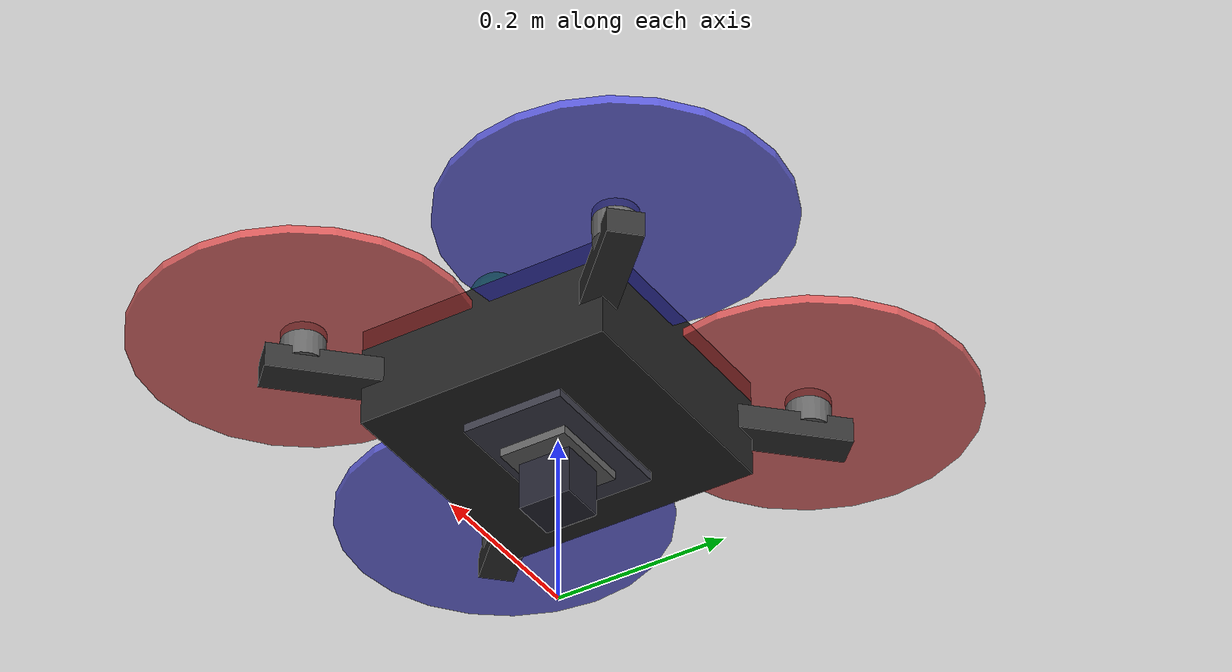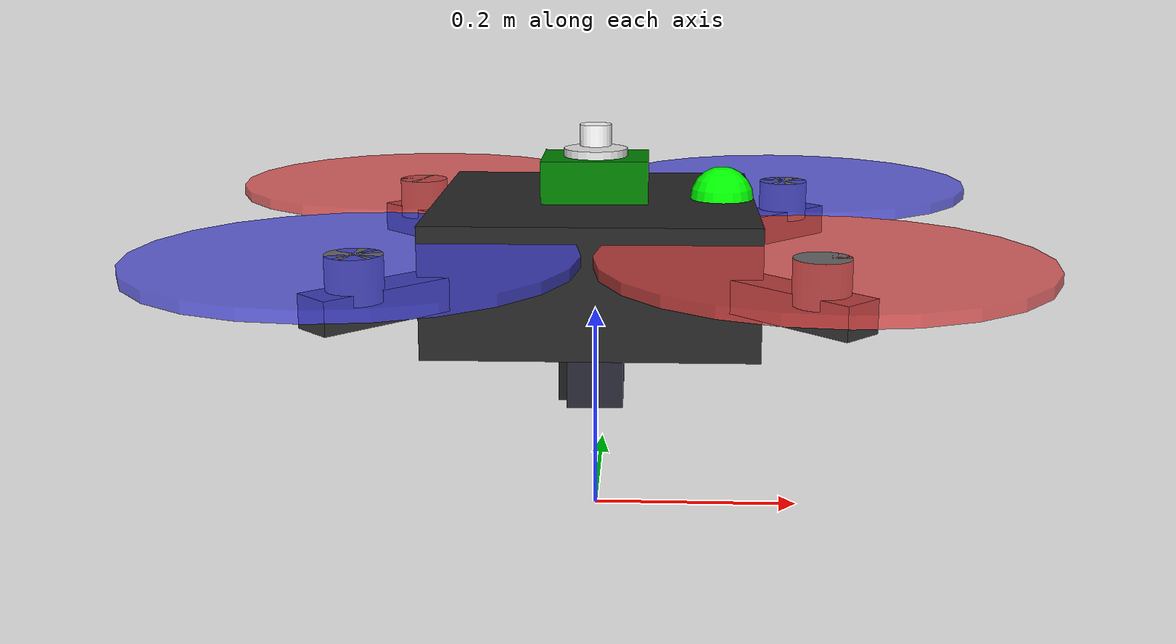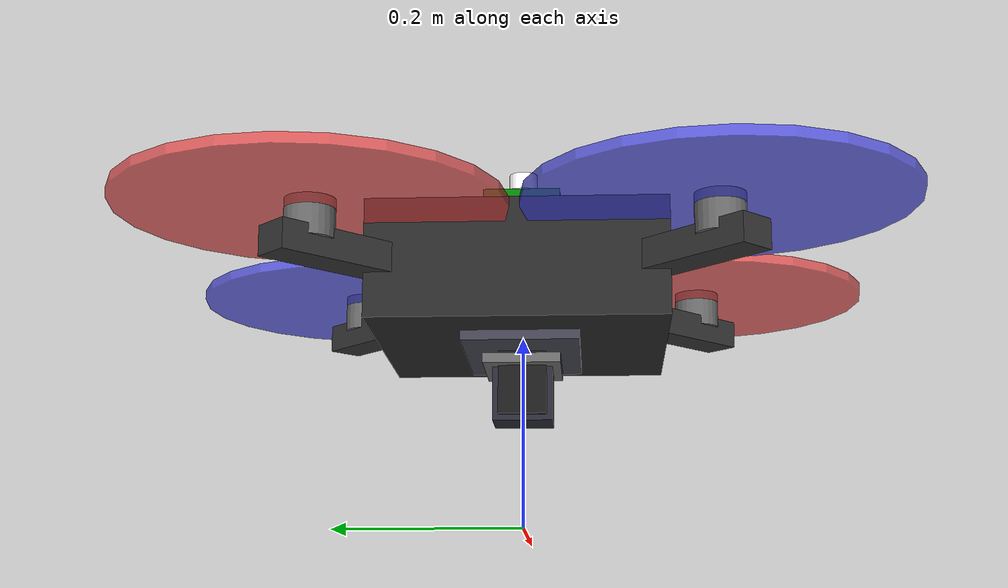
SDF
<?xml version="1.0" ?>
<sdf version="1.9">
  <model name="f11_multispectral">
    <pose>0 0 0.25 0 0 0</pose>

    <!-- F-11 Base Link (Main Body) -->
    <link name="base_link">
      <inertial>
        <!-- Total mass: 4.5 kg base + 0.45 kg payload = 4.95 kg -->
        <mass>4.95</mass>
        <!-- Slight CoG shift for bottom-mounted payload -->
        <pose>0 0 -0.02 0 0 0</pose>
        <inertia>
          <ixx>0.092</ixx>
          <ixy>0</ixy>
          <ixz>0</ixz>
          <iyy>0.092</iyy>
          <iyz>0</iyz>
          <izz>0.155</izz>
        </inertia>
      </inertial>

      <!-- Main body visual - central frame -->
      <visual name="body_visual">
        <geometry>
          <box>
            <size>0.30 0.30 0.12</size>
          </box>
        </geometry>
        <material>
          <ambient>0.1 0.1 0.1 1</ambient>
          <diffuse>0.15 0.15 0.15 1</diffuse>
          <specular>0.3 0.3 0.3 1</specular>
        </material>
      </visual>

      <!-- Battery bay visual -->
      <visual name="battery_visual">
        <pose>0 0 -0.04 0 0 0</pose>
        <geometry>
          <box>
            <size>0.18 0.12 0.06</size>
          </box>
        </geometry>
        <material>
          <ambient>0.2 0.2 0.25 1</ambient>
          <diffuse>0.25 0.25 0.3 1</diffuse>
        </material>
      </visual>

      <!-- Jetson Orin NX housing visual -->
      <visual name="compute_visual">
        <pose>0 0 0.08 0 0 0</pose>
        <geometry>
          <box>
            <size>0.10 0.08 0.04</size>
          </box>
        </geometry>
        <material>
          <ambient>0.0 0.4 0.0 1</ambient>
          <diffuse>0.0 0.5 0.0 1</diffuse>
        </material>
      </visual>

      <!-- Front marker for orientation (green) -->
      <visual name="front_marker">
        <pose>0.12 0 0.06 0 0 0</pose>
        <geometry>
          <sphere>
            <radius>0.03</radius>
          </sphere>
        </geometry>
        <material>
          <ambient>0 1 0 1</ambient>
          <diffuse>0 1 0 1</diffuse>
        </material>
      </visual>

      <!-- Arms visual representation -->
      <visual name="arm_fr_visual">
        <pose>0.1375 -0.1375 0 0 0 -0.785398</pose>
        <geometry>
          <box>
            <size>0.25 0.04 0.03</size>
          </box>
        </geometry>
        <material>
          <ambient>0.15 0.15 0.15 1</ambient>
          <diffuse>0.2 0.2 0.2 1</diffuse>
        </material>
      </visual>

      <visual name="arm_fl_visual">
        <pose>0.1375 0.1375 0 0 0 0.785398</pose>
        <geometry>
          <box>
            <size>0.25 0.04 0.03</size>
          </box>
        </geometry>
        <material>
          <ambient>0.15 0.15 0.15 1</ambient>
          <diffuse>0.2 0.2 0.2 1</diffuse>
        </material>
      </visual>

      <visual name="arm_br_visual">
        <pose>-0.1375 -0.1375 0 0 0 0.785398</pose>
        <geometry>
          <box>
            <size>0.25 0.04 0.03</size>
          </box>
        </geometry>
        <material>
          <ambient>0.15 0.15 0.15 1</ambient>
          <diffuse>0.2 0.2 0.2 1</diffuse>
        </material>
      </visual>

      <visual name="arm_bl_visual">
        <pose>-0.1375 0.1375 0 0 0 -0.785398</pose>
        <geometry>
          <box>
            <size>0.25 0.04 0.03</size>
          </box>
        </geometry>
        <material>
          <ambient>0.15 0.15 0.15 1</ambient>
          <diffuse>0.2 0.2 0.2 1</diffuse>
        </material>
      </visual>

      <collision name="body_collision">
        <geometry>
          <box>
            <size>0.55 0.55 0.15</size>
          </box>
        </geometry>
      </collision>
    </link>

    <!-- Rotor 0 (Front Right - CW) -->
    <link name="rotor_0">
      <pose>0.195 -0.195 0.04 0 0 0</pose>
      <inertial>
        <mass>0.025</mass>
        <inertia>
          <ixx>1.0e-05</ixx>
          <ixy>0</ixy>
          <ixz>0</ixz>
          <iyy>5.0e-04</iyy>
          <iyz>0</iyz>
          <izz>5.0e-04</izz>
        </inertia>
      </inertial>
      <visual name="rotor_visual">
        <geometry>
          <cylinder>
            <radius>0.19</radius>
            <length>0.01</length>
          </cylinder>
        </geometry>
        <material>
          <ambient>0.8 0.2 0.2 0.8</ambient>
          <diffuse>0.9 0.3 0.3 0.8</diffuse>
        </material>
      </visual>
      <visual name="motor_visual">
        <pose>0 0 -0.015 0 0 0</pose>
        <geometry>
          <cylinder>
            <radius>0.025</radius>
            <length>0.04</length>
          </cylinder>
        </geometry>
        <material>
          <ambient>0.3 0.3 0.3 1</ambient>
          <diffuse>0.4 0.4 0.4 1</diffuse>
        </material>
      </visual>
    </link>

    <!-- Rotor 1 (Back Left - CW) -->
    <link name="rotor_1">
      <pose>-0.195 0.195 0.04 0 0 0</pose>
      <inertial>
        <mass>0.025</mass>
        <inertia>
          <ixx>1.0e-05</ixx>
          <ixy>0</ixy>
          <ixz>0</ixz>
          <iyy>5.0e-04</iyy>
          <iyz>0</iyz>
          <izz>5.0e-04</izz>
        </inertia>
      </inertial>
      <visual name="rotor_visual">
        <geometry>
          <cylinder>
            <radius>0.19</radius>
            <length>0.01</length>
          </cylinder>
        </geometry>
        <material>
          <ambient>0.8 0.2 0.2 0.8</ambient>
          <diffuse>0.9 0.3 0.3 0.8</diffuse>
        </material>
      </visual>
      <visual name="motor_visual">
        <pose>0 0 -0.015 0 0 0</pose>
        <geometry>
          <cylinder>
            <radius>0.025</radius>
            <length>0.04</length>
          </cylinder>
        </geometry>
        <material>
          <ambient>0.3 0.3 0.3 1</ambient>
          <diffuse>0.4 0.4 0.4 1</diffuse>
        </material>
      </visual>
    </link>

    <!-- Rotor 2 (Front Left - CCW) -->
    <link name="rotor_2">
      <pose>0.195 0.195 0.04 0 0 0</pose>
      <inertial>
        <mass>0.025</mass>
        <inertia>
          <ixx>1.0e-05</ixx>
          <ixy>0</ixy>
          <ixz>0</ixz>
          <iyy>5.0e-04</iyy>
          <iyz>0</iyz>
          <izz>5.0e-04</izz>
        </inertia>
      </inertial>
      <visual name="rotor_visual">
        <geometry>
          <cylinder>
            <radius>0.19</radius>
            <length>0.01</length>
          </cylinder>
        </geometry>
        <material>
          <ambient>0.2 0.2 0.8 0.8</ambient>
          <diffuse>0.3 0.3 0.9 0.8</diffuse>
        </material>
      </visual>
      <visual name="motor_visual">
        <pose>0 0 -0.015 0 0 0</pose>
        <geometry>
          <cylinder>
            <radius>0.025</radius>
            <length>0.04</length>
          </cylinder>
        </geometry>
        <material>
          <ambient>0.3 0.3 0.3 1</ambient>
          <diffuse>0.4 0.4 0.4 1</diffuse>
        </material>
      </visual>
    </link>

    <!-- Rotor 3 (Back Right - CCW) -->
    <link name="rotor_3">
      <pose>-0.195 -0.195 0.04 0 0 0</pose>
      <inertial>
        <mass>0.025</mass>
        <inertia>
          <ixx>1.0e-05</ixx>
          <ixy>0</ixy>
          <ixz>0</ixz>
          <iyy>5.0e-04</iyy>
          <iyz>0</iyz>
          <izz>5.0e-04</izz>
        </inertia>
      </inertial>
      <visual name="rotor_visual">
        <geometry>
          <cylinder>
            <radius>0.19</radius>
            <length>0.01</length>
          </cylinder>
        </geometry>
        <material>
          <ambient>0.2 0.2 0.8 0.8</ambient>
          <diffuse>0.3 0.3 0.9 0.8</diffuse>
        </material>
      </visual>
      <visual name="motor_visual">
        <pose>0 0 -0.015 0 0 0</pose>
        <geometry>
          <cylinder>
            <radius>0.025</radius>
            <length>0.04</length>
          </cylinder>
        </geometry>
        <material>
          <ambient>0.3 0.3 0.3 1</ambient>
          <diffuse>0.4 0.4 0.4 1</diffuse>
        </material>
      </visual>
    </link>

    <!-- MicaSense RedEdge-P Camera Link -->
    <link name="multispectral_camera_link">
      <pose>0 0 -0.10 0 1.5708 0</pose>
      <inertial>
        <mass>0.35</mass>
        <inertia>
          <ixx>0.0003</ixx>
          <ixy>0</ixy>
          <ixz>0</ixz>
          <iyy>0.0004</iyy>
          <iyz>0</iyz>
          <izz>0.0003</izz>
        </inertia>
      </inertial>
      <!-- Camera body (RedEdge-P: 82x62x54mm) -->
      <visual name="camera_body_visual">
        <geometry>
          <box>
            <size>0.082 0.062 0.054</size>
          </box>
        </geometry>
        <material>
          <ambient>0.1 0.1 0.15 1</ambient>
          <diffuse>0.15 0.15 0.2 1</diffuse>
        </material>
      </visual>
      <!-- Lens array visualization -->
      <visual name="lens_array_visual">
        <pose>0 0 -0.03 0 0 0</pose>
        <geometry>
          <box>
            <size>0.07 0.05 0.01</size>
          </box>
        </geometry>
        <material>
          <ambient>0.05 0.05 0.05 1</ambient>
          <diffuse>0.1 0.1 0.1 1</diffuse>
        </material>
      </visual>
      <!-- Multispectral camera sensor (simulated as RGB for now) -->
      <sensor name="multispectral_camera" type="camera">
        <pose>0 0 -0.035 0 0 0</pose>
        <camera>
          <horizontal_fov>0.872</horizontal_fov>
          <image>
            <width>1280</width>
            <height>960</height>
            <format>R8G8B8</format>
          </image>
          <clip>
            <near>0.5</near>
            <far>500</far>
          </clip>
          <noise>
            <type>gaussian</type>
            <mean>0</mean>
            <stddev>0.005</stddev>
          </noise>
        </camera>
        <always_on>1</always_on>
        <update_rate>1</update_rate>
        <visualize>true</visualize>
      </sensor>
    </link>

    <!-- DLS (Downwelling Light Sensor) Link -->
    <link name="dls_link">
      <pose>0 0 0.12 0 0 0</pose>
      <inertial>
        <mass>0.05</mass>
        <inertia>
          <ixx>1e-05</ixx>
          <ixy>0</ixy>
          <ixz>0</ixz>
          <iyy>1e-05</iyy>
          <iyz>0</iyz>
          <izz>1e-05</izz>
        </inertia>
      </inertial>
      <visual name="dls_visual">
        <geometry>
          <cylinder>
            <radius>0.015</radius>
            <length>0.02</length>
          </cylinder>
        </geometry>
        <material>
          <ambient>0.9 0.9 0.9 1</ambient>
          <diffuse>1.0 1.0 1.0 1</diffuse>
        </material>
      </visual>
    </link>

    <!-- Mounting plate for camera -->
    <link name="camera_mount_link">
      <pose>0 0 -0.08 0 0 0</pose>
      <inertial>
        <mass>0.05</mass>
        <inertia>
          <ixx>5e-05</ixx>
          <ixy>0</ixy>
          <ixz>0</ixz>
          <iyy>5e-05</iyy>
          <iyz>0</iyz>
          <izz>5e-05</izz>
        </inertia>
      </inertial>
      <visual name="mount_visual">
        <geometry>
          <box>
            <size>0.10 0.08 0.01</size>
          </box>
        </geometry>
        <material>
          <ambient>0.3 0.3 0.3 1</ambient>
          <diffuse>0.4 0.4 0.4 1</diffuse>
        </material>
      </visual>
    </link>

    <!-- Rotor joints -->
    <joint name="rotor_0_joint" type="revolute">
      <parent>base_link</parent>
      <child>rotor_0</child>
      <axis>
        <xyz>0 0 1</xyz>
        <limit>
          <lower>-1e16</lower>
          <upper>1e16</upper>
        </limit>
        <dynamics>
          <damping>0.004</damping>
        </dynamics>
      </axis>
    </joint>

    <joint name="rotor_1_joint" type="revolute">
      <parent>base_link</parent>
      <child>rotor_1</child>
      <axis>
        <xyz>0 0 1</xyz>
        <limit>
          <lower>-1e16</lower>
          <upper>1e16</upper>
        </limit>
        <dynamics>
          <damping>0.004</damping>
        </dynamics>
      </axis>
    </joint>

    <joint name="rotor_2_joint" type="revolute">
      <parent>base_link</parent>
      <child>rotor_2</child>
      <axis>
        <xyz>0 0 1</xyz>
        <limit>
          <lower>-1e16</lower>
          <upper>1e16</upper>
        </limit>
        <dynamics>
          <damping>0.004</damping>
        </dynamics>
      </axis>
    </joint>

    <joint name="rotor_3_joint" type="revolute">
      <parent>base_link</parent>
      <child>rotor_3</child>
      <axis>
        <xyz>0 0 1</xyz>
        <limit>
          <lower>-1e16</lower>
          <upper>1e16</upper>
        </limit>
        <dynamics>
          <damping>0.004</damping>
        </dynamics>
      </axis>
    </joint>

    <!-- Payload joints -->
    <joint name="camera_mount_joint" type="fixed">
      <parent>base_link</parent>
      <child>camera_mount_link</child>
    </joint>

    <joint name="multispectral_camera_joint" type="fixed">
      <parent>camera_mount_link</parent>
      <child>multispectral_camera_link</child>
    </joint>

    <joint name="dls_joint" type="fixed">
      <parent>base_link</parent>
      <child>dls_link</child>
    </joint>

    <!-- IMU Sensor Link -->
    <link name="imu_link">
      <pose>0 0 0 0 0 0</pose>
      <inertial>
        <mass>0.015</mass>
        <inertia>
          <ixx>1e-05</ixx>
          <ixy>0</ixy>
          <ixz>0</ixz>
          <iyy>1e-05</iyy>
          <iyz>0</iyz>
          <izz>1e-05</izz>
        </inertia>
      </inertial>
      <sensor name="imu_sensor" type="imu">
        <always_on>1</always_on>
        <update_rate>250</update_rate>
        <imu>
          <angular_velocity>
            <x><noise type="gaussian"><mean>0</mean><stddev>0.009</stddev></noise></x>
            <y><noise type="gaussian"><mean>0</mean><stddev>0.009</stddev></noise></y>
            <z><noise type="gaussian"><mean>0</mean><stddev>0.009</stddev></noise></z>
          </angular_velocity>
          <linear_acceleration>
            <x><noise type="gaussian"><mean>0</mean><stddev>0.017</stddev></noise></x>
            <y><noise type="gaussian"><mean>0</mean><stddev>0.017</stddev></noise></y>
            <z><noise type="gaussian"><mean>0</mean><stddev>0.017</stddev></noise></z>
          </linear_acceleration>
        </imu>
      </sensor>
    </link>

    <joint name="imu_joint" type="fixed">
      <parent>base_link</parent>
      <child>imu_link</child>
    </joint>

    <!-- GPS Link -->
    <link name="gps_link">
      <pose>0 0 0.10 0 0 0</pose>
      <inertial>
        <mass>0.05</mass>
        <inertia>
          <ixx>1e-05</ixx>
          <ixy>0</ixy>
          <ixz>0</ixz>
          <iyy>1e-05</iyy>
          <iyz>0</iyz>
          <izz>1e-05</izz>
        </inertia>
      </inertial>
      <visual name="gps_visual">
        <geometry>
          <cylinder>
            <radius>0.03</radius>
            <length>0.015</length>
          </cylinder>
        </geometry>
        <material>
          <ambient>0.8 0.8 0.8 1</ambient>
          <diffuse>0.9 0.9 0.9 1</diffuse>
        </material>
      </visual>
      <sensor name="gps_sensor" type="navsat">
        <always_on>1</always_on>
        <update_rate>10</update_rate>
      </sensor>
    </link>

    <joint name="gps_joint" type="fixed">
      <parent>base_link</parent>
      <child>gps_link</child>
    </joint>

    <!-- ArduPilot Plugin -->
    <plugin filename="ArduPilotPlugin" name="ArduPilotPlugin">
      <fdm_addr>127.0.0.1</fdm_addr>
      <fdm_port_in>9002</fdm_port_in>
      <fdm_port_out>9003</fdm_port_out>

      <modelXYZToAirplaneXForwardZDown>0 0 0 3.141593 0 0</modelXYZToAirplaneXForwardZDown>
      <gazeboXYZToNED>0 0 0 3.141593 0 0</gazeboXYZToNED>
      <imuName>imu_link::imu_sensor</imuName>

      <!-- Motor 0: Front Right (CW) -->
      <control channel="0">
        <jointName>rotor_0_joint</jointName>
        <useForce>1</useForce>
        <multiplier>1250</multiplier>
        <offset>-0.5</offset>
        <servo_min>1000</servo_min>
        <servo_max>2000</servo_max>
        <type>VELOCITY</type>
        <p_gain>0.25</p_gain>
        <i_gain>0</i_gain>
        <d_gain>0</d_gain>
        <i_max>0</i_max>
        <i_min>0</i_min>
        <cmd_max>3.0</cmd_max>
        <cmd_min>-3.0</cmd_min>
      </control>

      <!-- Motor 1: Back Left (CW) -->
      <control channel="1">
        <jointName>rotor_1_joint</jointName>
        <useForce>1</useForce>
        <multiplier>1250</multiplier>
        <offset>-0.5</offset>
        <servo_min>1000</servo_min>
        <servo_max>2000</servo_max>
        <type>VELOCITY</type>
        <p_gain>0.25</p_gain>
        <i_gain>0</i_gain>
        <d_gain>0</d_gain>
        <i_max>0</i_max>
        <i_min>0</i_min>
        <cmd_max>3.0</cmd_max>
        <cmd_min>-3.0</cmd_min>
      </control>

      <!-- Motor 2: Front Left (CCW) -->
      <control channel="2">
        <jointName>rotor_2_joint</jointName>
        <useForce>1</useForce>
        <multiplier>1250</multiplier>
        <offset>-0.5</offset>
        <servo_min>1000</servo_min>
        <servo_max>2000</servo_max>
        <type>VELOCITY</type>
        <p_gain>0.25</p_gain>
        <i_gain>0</i_gain>
        <d_gain>0</d_gain>
        <i_max>0</i_max>
        <i_min>0</i_min>
        <cmd_max>3.0</cmd_max>
        <cmd_min>-3.0</cmd_min>
      </control>

      <!-- Motor 3: Back Right (CCW) -->
      <control channel="3">
        <jointName>rotor_3_joint</jointName>
        <useForce>1</useForce>
        <multiplier>1250</multiplier>
        <offset>-0.5</offset>
        <servo_min>1000</servo_min>
        <servo_max>2000</servo_max>
        <type>VELOCITY</type>
        <p_gain>0.25</p_gain>
        <i_gain>0</i_gain>
        <d_gain>0</d_gain>
        <i_max>0</i_max>
        <i_min>0</i_min>
        <cmd_max>3.0</cmd_max>
        <cmd_min>-3.0</cmd_min>
      </control>
    </plugin>

  </model>
</sdf>
